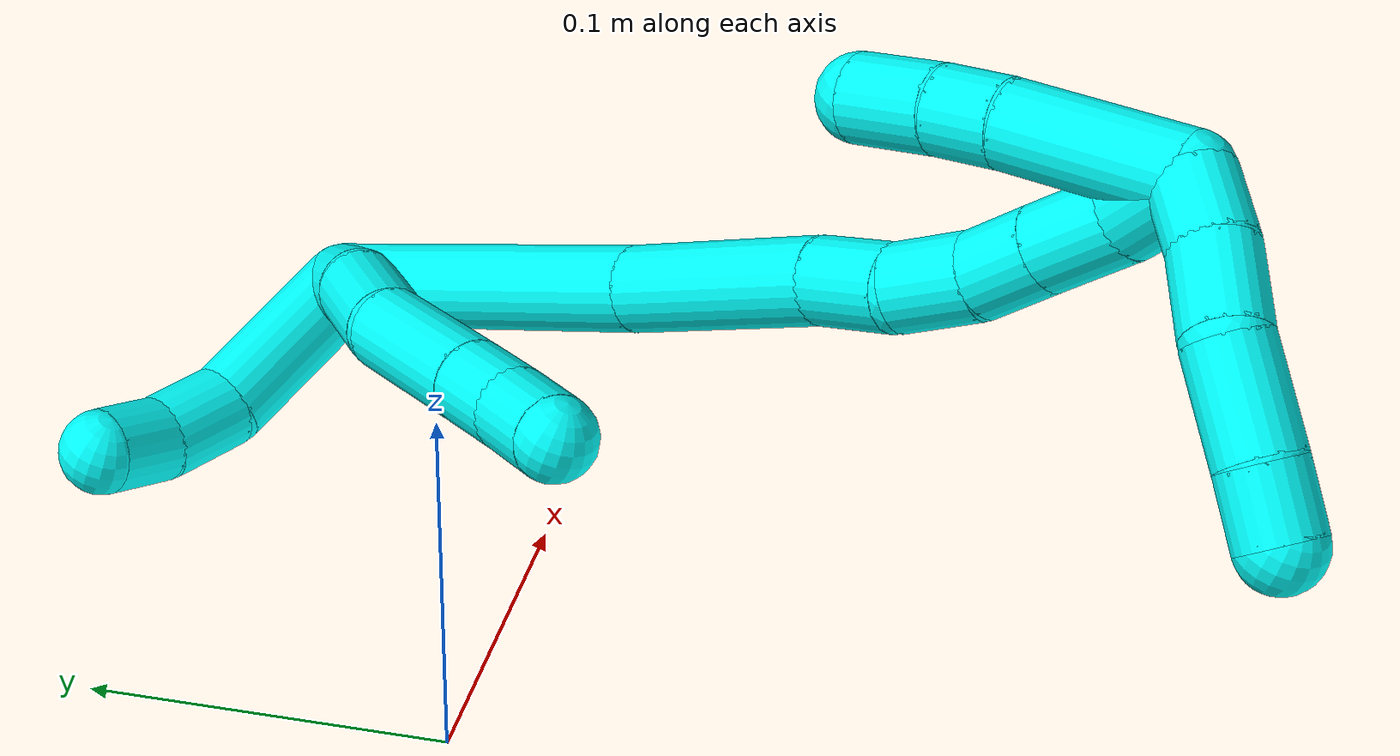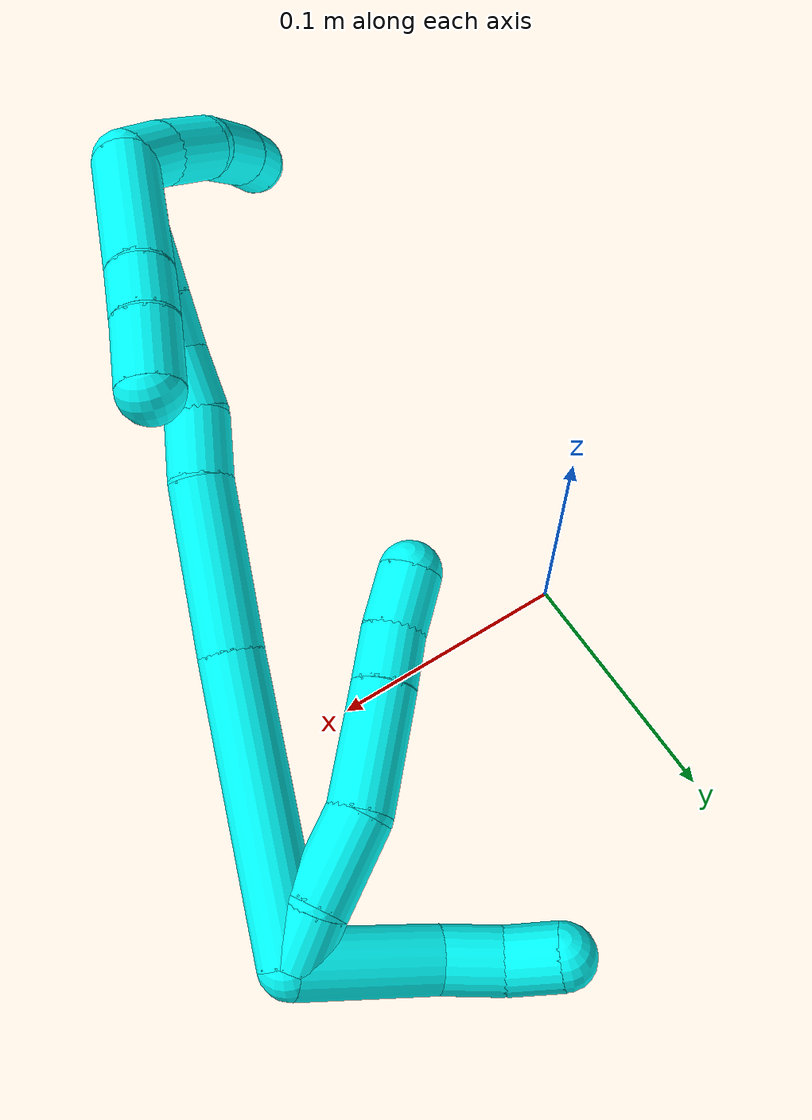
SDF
<sdf version="1.7">
 <world name="default">
  <model name="3">
   <static>0</static>
   <link name="3">
    <collision name="collision-cylinder-e_1_2_8">
     <pose>-0.007351 0.004421 0.00606 -0.63027 -0.775286 0.264656</pose>
     <geometry><cylinder><radius>0.0125</radius><length>0.021006</length></cylinder></geometry>
     <surface>
      <friction><ode><mu>1.16</mu><mu2>1.16</mu2><slip1>0</slip1><slip2>0</slip2></ode></friction>
      <contact><ode><kp>1e+06</kp><kd>1</kd><max_vel>0</max_vel><min_depth>0.001</min_depth></ode></contact>
     </surface>
    </collision>
    <visual name="visual-cylinder-e_1_2_8">
     <pose>-0.007351 0.004421 0.00606 -0.63027 -0.775286 0.264656</pose>
     <geometry><cylinder><radius>0.0125</radius><length>0.021006</length></cylinder></geometry>
     <material><ambient>0.003922 1 0.996078 1</ambient></material>
    </visual>
    <collision name="collision-cylinder-e_2_8_9">
     <pose>-0.029275 0.016431 0.018585 -0.865192 -0.970804 0.477855</pose>
     <geometry><cylinder><radius>0.0125</radius><length>0.035312</length></cylinder></geometry>
     <surface>
      <friction><ode><mu>1.16</mu><mu2>1.16</mu2><slip1>0</slip1><slip2>0</slip2></ode></friction>
      <contact><ode><kp>1e+06</kp><kd>1</kd><max_vel>0</max_vel><min_depth>0.001</min_depth></ode></contact>
     </surface>
    </collision>
    <visual name="visual-cylinder-e_2_8_9">
     <pose>-0.029275 0.016431 0.018585 -0.865192 -0.970804 0.477855</pose>
     <geometry><cylinder><radius>0.0125</radius><length>0.035312</length></cylinder></geometry>
     <material><ambient>0.003922 1 0.996078 1</ambient></material>
    </visual>
    <collision name="collision-cylinder-e_3_9_10">
     <pose>-0.065369 0.028092 0.034136 -0.421394 -1.1375 0.271732</pose>
     <geometry><cylinder><radius>0.0125</radius><length>0.047426</length></cylinder></geometry>
     <surface>
      <friction><ode><mu>1.16</mu><mu2>1.16</mu2><slip1>0</slip1><slip2>0</slip2></ode></friction>
      <contact><ode><kp>1e+06</kp><kd>1</kd><max_vel>0</max_vel><min_depth>0.001</min_depth></ode></contact>
     </surface>
    </collision>
    <visual name="visual-cylinder-e_3_9_10">
     <pose>-0.065369 0.028092 0.034136 -0.421394 -1.1375 0.271732</pose>
     <geometry><cylinder><radius>0.0125</radius><length>0.047426</length></cylinder></geometry>
     <material><ambient>0.003922 1 0.996078 1</ambient></material>
    </visual>
    <collision name="collision-cylinder-e_4_10_11">
     <pose>-0.09697 0.033798 0.047159 -0.393191 -1.17067 0.262507</pose>
     <geometry><cylinder><radius>0.0125</radius><length>0.021888</length></cylinder></geometry>
     <surface>
      <friction><ode><mu>1.16</mu><mu2>1.16</mu2><slip1>0</slip1><slip2>0</slip2></ode></friction>
      <contact><ode><kp>1e+06</kp><kd>1</kd><max_vel>0</max_vel><min_depth>0.001</min_depth></ode></contact>
     </surface>
    </collision>
    <visual name="visual-cylinder-e_4_10_11">
     <pose>-0.09697 0.033798 0.047159 -0.393191 -1.17067 0.262507</pose>
     <geometry><cylinder><radius>0.0125</radius><length>0.021888</length></cylinder></geometry>
     <material><ambient>0.003922 1 0.996078 1</ambient></material>
    </visual>
    <collision name="collision-cylinder-e_5_11_6">
     <pose>-0.117761 0.038561 0.055987 -0.569276 -1.07404 0.344939</pose>
     <geometry><cylinder><radius>0.0125</radius><length>0.024368</length></cylinder></geometry>
     <surface>
      <friction><ode><mu>1.16</mu><mu2>1.16</mu2><slip1>0</slip1><slip2>0</slip2></ode></friction>
      <contact><ode><kp>1e+06</kp><kd>1</kd><max_vel>0</max_vel><min_depth>0.001</min_depth></ode></contact>
     </surface>
    </collision>
    <visual name="visual-cylinder-e_5_11_6">
     <pose>-0.117761 0.038561 0.055987 -0.569276 -1.07404 0.344939</pose>
     <geometry><cylinder><radius>0.0125</radius><length>0.024368</length></cylinder></geometry>
     <material><ambient>0.003922 1 0.996078 1</ambient></material>
    </visual>
    <collision name="collision-cylinder-e_1_2_12">
     <pose>-0.007146 0.023576 -0.011683 -2.03087 -0.265191 0.423456</pose>
     <geometry><cylinder><radius>0.0125</radius><length>0.054531</length></cylinder></geometry>
     <surface>
      <friction><ode><mu>1.16</mu><mu2>1.16</mu2><slip1>0</slip1><slip2>0</slip2></ode></friction>
      <contact><ode><kp>1e+06</kp><kd>1</kd><max_vel>0</max_vel><min_depth>0.001</min_depth></ode></contact>
     </surface>
    </collision>
    <visual name="visual-cylinder-e_1_2_12">
     <pose>-0.007146 0.023576 -0.011683 -2.03087 -0.265191 0.423456</pose>
     <geometry><cylinder><radius>0.0125</radius><length>0.054531</length></cylinder></geometry>
     <material><ambient>0.003922 1 0.996078 1</ambient></material>
    </visual>
    <collision name="collision-cylinder-e_2_12_13">
     <pose>-0.015271 0.058958 -0.025909 -1.78296 -0.080855 0.100097</pose>
     <geometry><cylinder><radius>0.0125</radius><length>0.02423</length></cylinder></geometry>
     <surface>
      <friction><ode><mu>1.16</mu><mu2>1.16</mu2><slip1>0</slip1><slip2>0</slip2></ode></friction>
      <contact><ode><kp>1e+06</kp><kd>1</kd><max_vel>0</max_vel><min_depth>0.001</min_depth></ode></contact>
     </surface>
    </collision>
    <visual name="visual-cylinder-e_2_12_13">
     <pose>-0.015271 0.058958 -0.025909 -1.78296 -0.080855 0.100097</pose>
     <geometry><cylinder><radius>0.0125</radius><length>0.02423</length></cylinder></geometry>
     <material><ambient>0.003922 1 0.996078 1</ambient></material>
    </visual>
    <collision name="collision-cylinder-e_3_13_5">
     <pose>-0.016584 0.081346 -0.027648 -1.49502 -0.031549 0.029245</pose>
     <geometry><cylinder><radius>0.0125</radius><length>0.021239</length></cylinder></geometry>
     <surface>
      <friction><ode><mu>1.16</mu><mu2>1.16</mu2><slip1>0</slip1><slip2>0</slip2></ode></friction>
      <contact><ode><kp>1e+06</kp><kd>1</kd><max_vel>0</max_vel><min_depth>0.001</min_depth></ode></contact>
     </surface>
    </collision>
    <visual name="visual-cylinder-e_3_13_5">
     <pose>-0.016584 0.081346 -0.027648 -1.49502 -0.031549 0.029245</pose>
     <geometry><cylinder><radius>0.0125</radius><length>0.021239</length></cylinder></geometry>
     <material><ambient>0.003922 1 0.996078 1</ambient></material>
    </visual>
    <collision name="collision-cylinder-e_1_2_14">
     <pose>-0.043618 -0.010474 0.032275 0.313793 -0.909653 -0.154416</pose>
     <geometry><cylinder><radius>0.0125</radius><length>0.110524</length></cylinder></geometry>
     <surface>
      <friction><ode><mu>1.16</mu><mu2>1.16</mu2><slip1>0</slip1><slip2>0</slip2></ode></friction>
      <contact><ode><kp>1e+06</kp><kd>1</kd><max_vel>0</max_vel><min_depth>0.001</min_depth></ode></contact>
     </surface>
    </collision>
    <visual name="visual-cylinder-e_1_2_14">
     <pose>-0.043618 -0.010474 0.032275 0.313793 -0.909653 -0.154416</pose>
     <geometry><cylinder><radius>0.0125</radius><length>0.110524</length></cylinder></geometry>
     <material><ambient>0.003922 1 0.996078 1</ambient></material>
    </visual>
    <collision name="collision-cylinder-e_2_14_15">
     <pose>-0.112187 -0.026016 0.085209 0.240604 -0.864834 -0.111474</pose>
     <geometry><cylinder><radius>0.0125</radius><length>0.065577</length></cylinder></geometry>
     <surface>
      <friction><ode><mu>1.16</mu><mu2>1.16</mu2><slip1>0</slip1><slip2>0</slip2></ode></friction>
      <contact><ode><kp>1e+06</kp><kd>1</kd><max_vel>0</max_vel><min_depth>0.001</min_depth></ode></contact>
     </surface>
    </collision>
    <visual name="visual-cylinder-e_2_14_15">
     <pose>-0.112187 -0.026016 0.085209 0.240604 -0.864834 -0.111474</pose>
     <geometry><cylinder><radius>0.0125</radius><length>0.065577</length></cylinder></geometry>
     <material><ambient>0.003922 1 0.996078 1</ambient></material>
    </visual>
    <collision name="collision-cylinder-e_3_15_16">
     <pose>-0.148026 -0.032027 0.11312 0.129172 -0.979327 -0.068911</pose>
     <geometry><cylinder><radius>0.0125</radius><length>0.02623</length></cylinder></geometry>
     <surface>
      <friction><ode><mu>1.16</mu><mu2>1.16</mu2><slip1>0</slip1><slip2>0</slip2></ode></friction>
      <contact><ode><kp>1e+06</kp><kd>1</kd><max_vel>0</max_vel><min_depth>0.001</min_depth></ode></contact>
     </surface>
    </collision>
    <visual name="visual-cylinder-e_3_15_16">
     <pose>-0.148026 -0.032027 0.11312 0.129172 -0.979327 -0.068911</pose>
     <geometry><cylinder><radius>0.0125</radius><length>0.02623</length></cylinder></geometry>
     <material><ambient>0.003922 1 0.996078 1</ambient></material>
    </visual>
    <collision name="collision-cylinder-e_4_16_17">
     <pose>-0.167382 -0.036667 0.128628 0.421156 -0.75247 -0.168483</pose>
     <geometry><cylinder><radius>0.0125</radius><length>0.024784</length></cylinder></geometry>
     <surface>
      <friction><ode><mu>1.16</mu><mu2>1.16</mu2><slip1>0</slip1><slip2>0</slip2></ode></friction>
      <contact><ode><kp>1e+06</kp><kd>1</kd><max_vel>0</max_vel><min_depth>0.001</min_depth></ode></contact>
     </surface>
    </collision>
    <visual name="visual-cylinder-e_4_16_17">
     <pose>-0.167382 -0.036667 0.128628 0.421156 -0.75247 -0.168483</pose>
     <geometry><cylinder><radius>0.0125</radius><length>0.024784</length></cylinder></geometry>
     <material><ambient>0.003922 1 0.996078 1</ambient></material>
    </visual>
    <collision name="collision-cylinder-e_5_17_18">
     <pose>-0.181771 -0.042579 0.145782 0.243779 -0.573229 -0.072176</pose>
     <geometry><cylinder><radius>0.0125</radius><length>0.021829</length></cylinder></geometry>
     <surface>
      <friction><ode><mu>1.16</mu><mu2>1.16</mu2><slip1>0</slip1><slip2>0</slip2></ode></friction>
      <contact><ode><kp>1e+06</kp><kd>1</kd><max_vel>0</max_vel><min_depth>0.001</min_depth></ode></contact>
     </surface>
    </collision>
    <visual name="visual-cylinder-e_5_17_18">
     <pose>-0.181771 -0.042579 0.145782 0.243779 -0.573229 -0.072176</pose>
     <geometry><cylinder><radius>0.0125</radius><length>0.021829</length></cylinder></geometry>
     <material><ambient>0.003922 1 0.996078 1</ambient></material>
    </visual>
    <collision name="collision-cylinder-e_6_18_19">
     <pose>-0.194941 -0.047453 0.16532 0.245097 -0.584176 -0.074035</pose>
     <geometry><cylinder><radius>0.0125</radius><length>0.026294</length></cylinder></geometry>
     <surface>
      <friction><ode><mu>1.16</mu><mu2>1.16</mu2><slip1>0</slip1><slip2>0</slip2></ode></friction>
      <contact><ode><kp>1e+06</kp><kd>1</kd><max_vel>0</max_vel><min_depth>0.001</min_depth></ode></contact>
     </surface>
    </collision>
    <visual name="visual-cylinder-e_6_18_19">
     <pose>-0.194941 -0.047453 0.16532 0.245097 -0.584176 -0.074035</pose>
     <geometry><cylinder><radius>0.0125</radius><length>0.026294</length></cylinder></geometry>
     <material><ambient>0.003922 1 0.996078 1</ambient></material>
    </visual>
    <collision name="collision-cylinder-e_7_19_1">
     <pose>-0.207896 -0.05017 0.186947 0.005076 -0.478841 -0.001239</pose>
     <geometry><cylinder><radius>0.0125</radius><length>0.024762</length></cylinder></geometry>
     <surface>
      <friction><ode><mu>1.16</mu><mu2>1.16</mu2><slip1>0</slip1><slip2>0</slip2></ode></friction>
      <contact><ode><kp>1e+06</kp><kd>1</kd><max_vel>0</max_vel><min_depth>0.001</min_depth></ode></contact>
     </surface>
    </collision>
    <visual name="visual-cylinder-e_7_19_1">
     <pose>-0.207896 -0.05017 0.186947 0.005076 -0.478841 -0.001239</pose>
     <geometry><cylinder><radius>0.0125</radius><length>0.024762</length></cylinder></geometry>
     <material><ambient>0.003922 1 0.996078 1</ambient></material>
    </visual>
    <collision name="collision-cylinder-e_1_1_20">
     <pose>-0.189284 -0.044445 0.188911 -2.5719 1.15564 -2.29746</pose>
     <geometry><cylinder><radius>0.0125</radius><length>0.053148</length></cylinder></geometry>
     <surface>
      <friction><ode><mu>1.16</mu><mu2>1.16</mu2><slip1>0</slip1><slip2>0</slip2></ode></friction>
      <contact><ode><kp>1e+06</kp><kd>1</kd><max_vel>0</max_vel><min_depth>0.001</min_depth></ode></contact>
     </surface>
    </collision>
    <visual name="visual-cylinder-e_1_1_20">
     <pose>-0.189284 -0.044445 0.188911 -2.5719 1.15564 -2.29746</pose>
     <geometry><cylinder><radius>0.0125</radius><length>0.053148</length></cylinder></geometry>
     <material><ambient>0.003922 1 0.996078 1</ambient></material>
    </visual>
    <collision name="collision-cylinder-e_2_20_21">
     <pose>-0.155903 -0.036883 0.175668 -2.74204 1.10314 -2.50574</pose>
     <geometry><cylinder><radius>0.0125</radius><length>0.020309</length></cylinder></geometry>
     <surface>
      <friction><ode><mu>1.16</mu><mu2>1.16</mu2><slip1>0</slip1><slip2>0</slip2></ode></friction>
      <contact><ode><kp>1e+06</kp><kd>1</kd><max_vel>0</max_vel><min_depth>0.001</min_depth></ode></contact>
     </surface>
    </collision>
    <visual name="visual-cylinder-e_2_20_21">
     <pose>-0.155903 -0.036883 0.175668 -2.74204 1.10314 -2.50574</pose>
     <geometry><cylinder><radius>0.0125</radius><length>0.020309</length></cylinder></geometry>
     <material><ambient>0.003922 1 0.996078 1</ambient></material>
    </visual>
    <collision name="collision-cylinder-e_3_21_4">
     <pose>-0.135333 -0.033455 0.165047 -2.8898 1.04917 -2.71094</pose>
     <geometry><cylinder><radius>0.0125</radius><length>0.026543</length></cylinder></geometry>
     <surface>
      <friction><ode><mu>1.16</mu><mu2>1.16</mu2><slip1>0</slip1><slip2>0</slip2></ode></friction>
      <contact><ode><kp>1e+06</kp><kd>1</kd><max_vel>0</max_vel><min_depth>0.001</min_depth></ode></contact>
     </surface>
    </collision>
    <visual name="visual-cylinder-e_3_21_4">
     <pose>-0.135333 -0.033455 0.165047 -2.8898 1.04917 -2.71094</pose>
     <geometry><cylinder><radius>0.0125</radius><length>0.026543</length></cylinder></geometry>
     <material><ambient>0.003922 1 0.996078 1</ambient></material>
    </visual>
    <collision name="collision-cylinder-e_1_1_22">
     <pose>-0.223279 -0.046589 0.194578 -2.31632 -1.09803 1.89936</pose>
     <geometry><cylinder><radius>0.0125</radius><length>0.021742</length></cylinder></geometry>
     <surface>
      <friction><ode><mu>1.16</mu><mu2>1.16</mu2><slip1>0</slip1><slip2>0</slip2></ode></friction>
      <contact><ode><kp>1e+06</kp><kd>1</kd><max_vel>0</max_vel><min_depth>0.001</min_depth></ode></contact>
     </surface>
    </collision>
    <visual name="visual-cylinder-e_1_1_22">
     <pose>-0.223279 -0.046589 0.194578 -2.31632 -1.09803 1.89936</pose>
     <geometry><cylinder><radius>0.0125</radius><length>0.021742</length></cylinder></geometry>
     <material><ambient>0.003922 1 0.996078 1</ambient></material>
    </visual>
    <collision name="collision-cylinder-e_2_22_23">
     <pose>-0.243502 -0.037274 0.186503 -2.26407 -0.960017 1.67446</pose>
     <geometry><cylinder><radius>0.0125</radius><length>0.025743</length></cylinder></geometry>
     <surface>
      <friction><ode><mu>1.16</mu><mu2>1.16</mu2><slip1>0</slip1><slip2>0</slip2></ode></friction>
      <contact><ode><kp>1e+06</kp><kd>1</kd><max_vel>0</max_vel><min_depth>0.001</min_depth></ode></contact>
     </surface>
    </collision>
    <visual name="visual-cylinder-e_2_22_23">
     <pose>-0.243502 -0.037274 0.186503 -2.26407 -0.960017 1.67446</pose>
     <geometry><cylinder><radius>0.0125</radius><length>0.025743</length></cylinder></geometry>
     <material><ambient>0.003922 1 0.996078 1</ambient></material>
    </visual>
    <collision name="collision-cylinder-e_3_23_24">
     <pose>-0.267286 -0.029341 0.173264 -2.88283 -0.983385 2.66496</pose>
     <geometry><cylinder><radius>0.0125</radius><length>0.03181</length></cylinder></geometry>
     <surface>
      <friction><ode><mu>1.16</mu><mu2>1.16</mu2><slip1>0</slip1><slip2>0</slip2></ode></friction>
      <contact><ode><kp>1e+06</kp><kd>1</kd><max_vel>0</max_vel><min_depth>0.001</min_depth></ode></contact>
     </surface>
    </collision>
    <visual name="visual-cylinder-e_3_23_24">
     <pose>-0.267286 -0.029341 0.173264 -2.88283 -0.983385 2.66496</pose>
     <geometry><cylinder><radius>0.0125</radius><length>0.03181</length></cylinder></geometry>
     <material><ambient>0.003922 1 0.996078 1</ambient></material>
    </visual>
    <collision name="collision-cylinder-e_4_24_3">
     <pose>-0.28868 -0.026313 0.158412 -3.02014 -0.907097 2.89339</pose>
     <geometry><cylinder><radius>0.0125</radius><length>0.020705</length></cylinder></geometry>
     <surface>
      <friction><ode><mu>1.16</mu><mu2>1.16</mu2><slip1>0</slip1><slip2>0</slip2></ode></friction>
      <contact><ode><kp>1e+06</kp><kd>1</kd><max_vel>0</max_vel><min_depth>0.001</min_depth></ode></contact>
     </surface>
    </collision>
    <visual name="visual-cylinder-e_4_24_3">
     <pose>-0.28868 -0.026313 0.158412 -3.02014 -0.907097 2.89339</pose>
     <geometry><cylinder><radius>0.0125</radius><length>0.020705</length></cylinder></geometry>
     <material><ambient>0.003922 1 0.996078 1</ambient></material>
    </visual>
    <collision name="collision-sphere-3">
     <pose>-0.296834 -0.02554 0.152082 0 -0 0</pose>
     <geometry><sphere><radius>0.0125</radius></sphere></geometry>
     <surface>
      <friction><ode><mu>1.16</mu><mu2>1.16</mu2><slip1>0</slip1><slip2>0</slip2></ode></friction>
      <contact><ode><kp>1e+06</kp><kd>1</kd><max_vel>0</max_vel><min_depth>0.001</min_depth></ode></contact>
     </surface>
    </collision>
    <visual name="visual-sphere-3">
     <pose>-0.296834 -0.02554 0.152082 0 -0 0</pose>
     <geometry><sphere><radius>0.0125</radius></sphere></geometry>
     <material><ambient>0.003922 1 0.996078 1</ambient></material>
    </visual>
    <collision name="collision-sphere-24">
     <pose>-0.280525 -0.027085 0.164742 0 -0 0</pose>
     <geometry><sphere><radius>0.0125</radius></sphere></geometry>
     <surface>
      <friction><ode><mu>1.16</mu><mu2>1.16</mu2><slip1>0</slip1><slip2>0</slip2></ode></friction>
      <contact><ode><kp>1e+06</kp><kd>1</kd><max_vel>0</max_vel><min_depth>0.001</min_depth></ode></contact>
     </surface>
    </collision>
    <visual name="visual-sphere-24">
     <pose>-0.280525 -0.027085 0.164742 0 -0 0</pose>
     <geometry><sphere><radius>0.0125</radius></sphere></geometry>
     <material><ambient>0.003922 1 0.996078 1</ambient></material>
    </visual>
    <collision name="collision-sphere-23">
     <pose>-0.254047 -0.031596 0.181785 0 -0 0</pose>
     <geometry><sphere><radius>0.0125</radius></sphere></geometry>
     <surface>
      <friction><ode><mu>1.16</mu><mu2>1.16</mu2><slip1>0</slip1><slip2>0</slip2></ode></friction>
      <contact><ode><kp>1e+06</kp><kd>1</kd><max_vel>0</max_vel><min_depth>0.001</min_depth></ode></contact>
     </surface>
    </collision>
    <visual name="visual-sphere-23">
     <pose>-0.254047 -0.031596 0.181785 0 -0 0</pose>
     <geometry><sphere><radius>0.0125</radius></sphere></geometry>
     <material><ambient>0.003922 1 0.996078 1</ambient></material>
    </visual>
    <collision name="collision-sphere-22">
     <pose>-0.232958 -0.042952 0.19122 0 -0 0</pose>
     <geometry><sphere><radius>0.0125</radius></sphere></geometry>
     <surface>
      <friction><ode><mu>1.16</mu><mu2>1.16</mu2><slip1>0</slip1><slip2>0</slip2></ode></friction>
      <contact><ode><kp>1e+06</kp><kd>1</kd><max_vel>0</max_vel><min_depth>0.001</min_depth></ode></contact>
     </surface>
    </collision>
    <visual name="visual-sphere-22">
     <pose>-0.232958 -0.042952 0.19122 0 -0 0</pose>
     <geometry><sphere><radius>0.0125</radius></sphere></geometry>
     <material><ambient>0.003922 1 0.996078 1</ambient></material>
    </visual>
    <collision name="collision-sphere-4">
     <pose>-0.123826 -0.031807 0.158642 0 -0 0</pose>
     <geometry><sphere><radius>0.0125</radius></sphere></geometry>
     <surface>
      <friction><ode><mu>1.16</mu><mu2>1.16</mu2><slip1>0</slip1><slip2>0</slip2></ode></friction>
      <contact><ode><kp>1e+06</kp><kd>1</kd><max_vel>0</max_vel><min_depth>0.001</min_depth></ode></contact>
     </surface>
    </collision>
    <visual name="visual-sphere-4">
     <pose>-0.123826 -0.031807 0.158642 0 -0 0</pose>
     <geometry><sphere><radius>0.0125</radius></sphere></geometry>
     <material><ambient>0.003922 1 0.996078 1</ambient></material>
    </visual>
    <collision name="collision-sphere-21">
     <pose>-0.146839 -0.035102 0.171451 0 -0 0</pose>
     <geometry><sphere><radius>0.0125</radius></sphere></geometry>
     <surface>
      <friction><ode><mu>1.16</mu><mu2>1.16</mu2><slip1>0</slip1><slip2>0</slip2></ode></friction>
      <contact><ode><kp>1e+06</kp><kd>1</kd><max_vel>0</max_vel><min_depth>0.001</min_depth></ode></contact>
     </surface>
    </collision>
    <visual name="visual-sphere-21">
     <pose>-0.146839 -0.035102 0.171451 0 -0 0</pose>
     <geometry><sphere><radius>0.0125</radius></sphere></geometry>
     <material><ambient>0.003922 1 0.996078 1</ambient></material>
    </visual>
    <collision name="collision-sphere-20">
     <pose>-0.164967 -0.038664 0.179885 0 -0 0</pose>
     <geometry><sphere><radius>0.0125</radius></sphere></geometry>
     <surface>
      <friction><ode><mu>1.16</mu><mu2>1.16</mu2><slip1>0</slip1><slip2>0</slip2></ode></friction>
      <contact><ode><kp>1e+06</kp><kd>1</kd><max_vel>0</max_vel><min_depth>0.001</min_depth></ode></contact>
     </surface>
    </collision>
    <visual name="visual-sphere-20">
     <pose>-0.164967 -0.038664 0.179885 0 -0 0</pose>
     <geometry><sphere><radius>0.0125</radius></sphere></geometry>
     <material><ambient>0.003922 1 0.996078 1</ambient></material>
    </visual>
    <collision name="collision-sphere-6">
     <pose>-0.128472 0.041691 0.060878 0 -0 0</pose>
     <geometry><sphere><radius>0.0125</radius></sphere></geometry>
     <surface>
      <friction><ode><mu>1.16</mu><mu2>1.16</mu2><slip1>0</slip1><slip2>0</slip2></ode></friction>
      <contact><ode><kp>1e+06</kp><kd>1</kd><max_vel>0</max_vel><min_depth>0.001</min_depth></ode></contact>
     </surface>
    </collision>
    <visual name="visual-sphere-6">
     <pose>-0.128472 0.041691 0.060878 0 -0 0</pose>
     <geometry><sphere><radius>0.0125</radius></sphere></geometry>
     <material><ambient>0.003922 1 0.996078 1</ambient></material>
    </visual>
    <collision name="collision-sphere-11">
     <pose>-0.107049 0.035431 0.051096 0 -0 0</pose>
     <geometry><sphere><radius>0.0125</radius></sphere></geometry>
     <surface>
      <friction><ode><mu>1.16</mu><mu2>1.16</mu2><slip1>0</slip1><slip2>0</slip2></ode></friction>
      <contact><ode><kp>1e+06</kp><kd>1</kd><max_vel>0</max_vel><min_depth>0.001</min_depth></ode></contact>
     </surface>
    </collision>
    <visual name="visual-sphere-11">
     <pose>-0.107049 0.035431 0.051096 0 -0 0</pose>
     <geometry><sphere><radius>0.0125</radius></sphere></geometry>
     <material><ambient>0.003922 1 0.996078 1</ambient></material>
    </visual>
    <collision name="collision-sphere-10">
     <pose>-0.086891 0.032165 0.043221 0 -0 0</pose>
     <geometry><sphere><radius>0.0125</radius></sphere></geometry>
     <surface>
      <friction><ode><mu>1.16</mu><mu2>1.16</mu2><slip1>0</slip1><slip2>0</slip2></ode></friction>
      <contact><ode><kp>1e+06</kp><kd>1</kd><max_vel>0</max_vel><min_depth>0.001</min_depth></ode></contact>
     </surface>
    </collision>
    <visual name="visual-sphere-10">
     <pose>-0.086891 0.032165 0.043221 0 -0 0</pose>
     <geometry><sphere><radius>0.0125</radius></sphere></geometry>
     <material><ambient>0.003922 1 0.996078 1</ambient></material>
    </visual>
    <collision name="collision-sphere-9">
     <pose>-0.043847 0.02402 0.02505 0 -0 0</pose>
     <geometry><sphere><radius>0.0125</radius></sphere></geometry>
     <surface>
      <friction><ode><mu>1.16</mu><mu2>1.16</mu2><slip1>0</slip1><slip2>0</slip2></ode></friction>
      <contact><ode><kp>1e+06</kp><kd>1</kd><max_vel>0</max_vel><min_depth>0.001</min_depth></ode></contact>
     </surface>
    </collision>
    <visual name="visual-sphere-9">
     <pose>-0.043847 0.02402 0.02505 0 -0 0</pose>
     <geometry><sphere><radius>0.0125</radius></sphere></geometry>
     <material><ambient>0.003922 1 0.996078 1</ambient></material>
    </visual>
    <collision name="collision-sphere-2">
     <geometry><sphere><radius>0.0125</radius></sphere></geometry>
     <surface>
      <friction><ode><mu>1.16</mu><mu2>1.16</mu2><slip1>0</slip1><slip2>0</slip2></ode></friction>
      <contact><ode><kp>1e+06</kp><kd>1</kd><max_vel>0</max_vel><min_depth>0.001</min_depth></ode></contact>
     </surface>
    </collision>
    <visual name="visual-sphere-2">
     <geometry><sphere><radius>0.0125</radius></sphere></geometry>
     <material><ambient>0.003922 1 0.996078 1</ambient></material>
    </visual>
    <collision name="collision-sphere-19">
     <pose>-0.202192 -0.050114 0.175959 0 -0 0</pose>
     <geometry><sphere><radius>0.0125</radius></sphere></geometry>
     <surface>
      <friction><ode><mu>1.16</mu><mu2>1.16</mu2><slip1>0</slip1><slip2>0</slip2></ode></friction>
      <contact><ode><kp>1e+06</kp><kd>1</kd><max_vel>0</max_vel><min_depth>0.001</min_depth></ode></contact>
     </surface>
    </collision>
    <visual name="visual-sphere-19">
     <pose>-0.202192 -0.050114 0.175959 0 -0 0</pose>
     <geometry><sphere><radius>0.0125</radius></sphere></geometry>
     <material><ambient>0.003922 1 0.996078 1</ambient></material>
    </visual>
    <collision name="collision-sphere-8">
     <pose>-0.014703 0.008842 0.01212 0 -0 0</pose>
     <geometry><sphere><radius>0.0125</radius></sphere></geometry>
     <surface>
      <friction><ode><mu>1.16</mu><mu2>1.16</mu2><slip1>0</slip1><slip2>0</slip2></ode></friction>
      <contact><ode><kp>1e+06</kp><kd>1</kd><max_vel>0</max_vel><min_depth>0.001</min_depth></ode></contact>
     </surface>
    </collision>
    <visual name="visual-sphere-8">
     <pose>-0.014703 0.008842 0.01212 0 -0 0</pose>
     <geometry><sphere><radius>0.0125</radius></sphere></geometry>
     <material><ambient>0.003922 1 0.996078 1</ambient></material>
    </visual>
    <collision name="collision-sphere-12">
     <pose>-0.014292 0.047153 -0.023366 0 -0 0</pose>
     <geometry><sphere><radius>0.0125</radius></sphere></geometry>
     <surface>
      <friction><ode><mu>1.16</mu><mu2>1.16</mu2><slip1>0</slip1><slip2>0</slip2></ode></friction>
      <contact><ode><kp>1e+06</kp><kd>1</kd><max_vel>0</max_vel><min_depth>0.001</min_depth></ode></contact>
     </surface>
    </collision>
    <visual name="visual-sphere-12">
     <pose>-0.014292 0.047153 -0.023366 0 -0 0</pose>
     <geometry><sphere><radius>0.0125</radius></sphere></geometry>
     <material><ambient>0.003922 1 0.996078 1</ambient></material>
    </visual>
    <collision name="collision-sphere-13">
     <pose>-0.016249 0.070762 -0.028452 0 -0 0</pose>
     <geometry><sphere><radius>0.0125</radius></sphere></geometry>
     <surface>
      <friction><ode><mu>1.16</mu><mu2>1.16</mu2><slip1>0</slip1><slip2>0</slip2></ode></friction>
      <contact><ode><kp>1e+06</kp><kd>1</kd><max_vel>0</max_vel><min_depth>0.001</min_depth></ode></contact>
     </surface>
    </collision>
    <visual name="visual-sphere-13">
     <pose>-0.016249 0.070762 -0.028452 0 -0 0</pose>
     <geometry><sphere><radius>0.0125</radius></sphere></geometry>
     <material><ambient>0.003922 1 0.996078 1</ambient></material>
    </visual>
    <collision name="collision-sphere-5">
     <pose>-0.016919 0.09193 -0.026845 0 -0 0</pose>
     <geometry><sphere><radius>0.0125</radius></sphere></geometry>
     <surface>
      <friction><ode><mu>1.16</mu><mu2>1.16</mu2><slip1>0</slip1><slip2>0</slip2></ode></friction>
      <contact><ode><kp>1e+06</kp><kd>1</kd><max_vel>0</max_vel><min_depth>0.001</min_depth></ode></contact>
     </surface>
    </collision>
    <visual name="visual-sphere-5">
     <pose>-0.016919 0.09193 -0.026845 0 -0 0</pose>
     <geometry><sphere><radius>0.0125</radius></sphere></geometry>
     <material><ambient>0.003922 1 0.996078 1</ambient></material>
    </visual>
    <collision name="collision-sphere-14">
     <pose>-0.087236 -0.020947 0.06455 0 -0 0</pose>
     <geometry><sphere><radius>0.0125</radius></sphere></geometry>
     <surface>
      <friction><ode><mu>1.16</mu><mu2>1.16</mu2><slip1>0</slip1><slip2>0</slip2></ode></friction>
      <contact><ode><kp>1e+06</kp><kd>1</kd><max_vel>0</max_vel><min_depth>0.001</min_depth></ode></contact>
     </surface>
    </collision>
    <visual name="visual-sphere-14">
     <pose>-0.087236 -0.020947 0.06455 0 -0 0</pose>
     <geometry><sphere><radius>0.0125</radius></sphere></geometry>
     <material><ambient>0.003922 1 0.996078 1</ambient></material>
    </visual>
    <collision name="collision-sphere-15">
     <pose>-0.137139 -0.031085 0.105869 0 -0 0</pose>
     <geometry><sphere><radius>0.0125</radius></sphere></geometry>
     <surface>
      <friction><ode><mu>1.16</mu><mu2>1.16</mu2><slip1>0</slip1><slip2>0</slip2></ode></friction>
      <contact><ode><kp>1e+06</kp><kd>1</kd><max_vel>0</max_vel><min_depth>0.001</min_depth></ode></contact>
     </surface>
    </collision>
    <visual name="visual-sphere-15">
     <pose>-0.137139 -0.031085 0.105869 0 -0 0</pose>
     <geometry><sphere><radius>0.0125</radius></sphere></geometry>
     <material><ambient>0.003922 1 0.996078 1</ambient></material>
    </visual>
    <collision name="collision-sphere-16">
     <pose>-0.158913 -0.032969 0.120372 0 -0 0</pose>
     <geometry><sphere><radius>0.0125</radius></sphere></geometry>
     <surface>
      <friction><ode><mu>1.16</mu><mu2>1.16</mu2><slip1>0</slip1><slip2>0</slip2></ode></friction>
      <contact><ode><kp>1e+06</kp><kd>1</kd><max_vel>0</max_vel><min_depth>0.001</min_depth></ode></contact>
     </surface>
    </collision>
    <visual name="visual-sphere-16">
     <pose>-0.158913 -0.032969 0.120372 0 -0 0</pose>
     <geometry><sphere><radius>0.0125</radius></sphere></geometry>
     <material><ambient>0.003922 1 0.996078 1</ambient></material>
    </visual>
    <collision name="collision-sphere-17">
     <pose>-0.175851 -0.040366 0.136883 0 -0 0</pose>
     <geometry><sphere><radius>0.0125</radius></sphere></geometry>
     <surface>
      <friction><ode><mu>1.16</mu><mu2>1.16</mu2><slip1>0</slip1><slip2>0</slip2></ode></friction>
      <contact><ode><kp>1e+06</kp><kd>1</kd><max_vel>0</max_vel><min_depth>0.001</min_depth></ode></contact>
     </surface>
    </collision>
    <visual name="visual-sphere-17">
     <pose>-0.175851 -0.040366 0.136883 0 -0 0</pose>
     <geometry><sphere><radius>0.0125</radius></sphere></geometry>
     <material><ambient>0.003922 1 0.996078 1</ambient></material>
    </visual>
    <collision name="collision-sphere-18">
     <pose>-0.18769 -0.044792 0.154681 0 -0 0</pose>
     <geometry><sphere><radius>0.0125</radius></sphere></geometry>
     <surface>
      <friction><ode><mu>1.16</mu><mu2>1.16</mu2><slip1>0</slip1><slip2>0</slip2></ode></friction>
      <contact><ode><kp>1e+06</kp><kd>1</kd><max_vel>0</max_vel><min_depth>0.001</min_depth></ode></contact>
     </surface>
    </collision>
    <visual name="visual-sphere-18">
     <pose>-0.18769 -0.044792 0.154681 0 -0 0</pose>
     <geometry><sphere><radius>0.0125</radius></sphere></geometry>
     <material><ambient>0.003922 1 0.996078 1</ambient></material>
    </visual>
    <collision name="collision-sphere-1">
     <pose>-0.213601 -0.050226 0.197936 0 -0 0</pose>
     <geometry><sphere><radius>0.0125</radius></sphere></geometry>
     <surface>
      <friction><ode><mu>1.16</mu><mu2>1.16</mu2><slip1>0</slip1><slip2>0</slip2></ode></friction>
      <contact><ode><kp>1e+06</kp><kd>1</kd><max_vel>0</max_vel><min_depth>0.001</min_depth></ode></contact>
     </surface>
    </collision>
    <visual name="visual-sphere-1">
     <pose>-0.213601 -0.050226 0.197936 0 -0 0</pose>
     <geometry><sphere><radius>0.0125</radius></sphere></geometry>
     <material><ambient>0.003922 1 0.996078 1</ambient></material>
    </visual>
    <inertial>
     <pose>-0.116352 -0.009807 0.088303 0 -0 0</pose>
     <mass>0.75</mass>
     <inertia>
      <ixx>8.1e-05</ixx>
      <ixy>0</ixy>
      <ixz>0</ixz>
      <iyy>0.000196</iyy>
      <iyz>0</iyz>
      <izz>0.000144</izz>
     </inertia>
    </inertial>
   </link>
   <pose>0.171261 0.081267 0.030409 0.183396 -0.284057 0.918681</pose>
  </model>
 </world>
</sdf>
